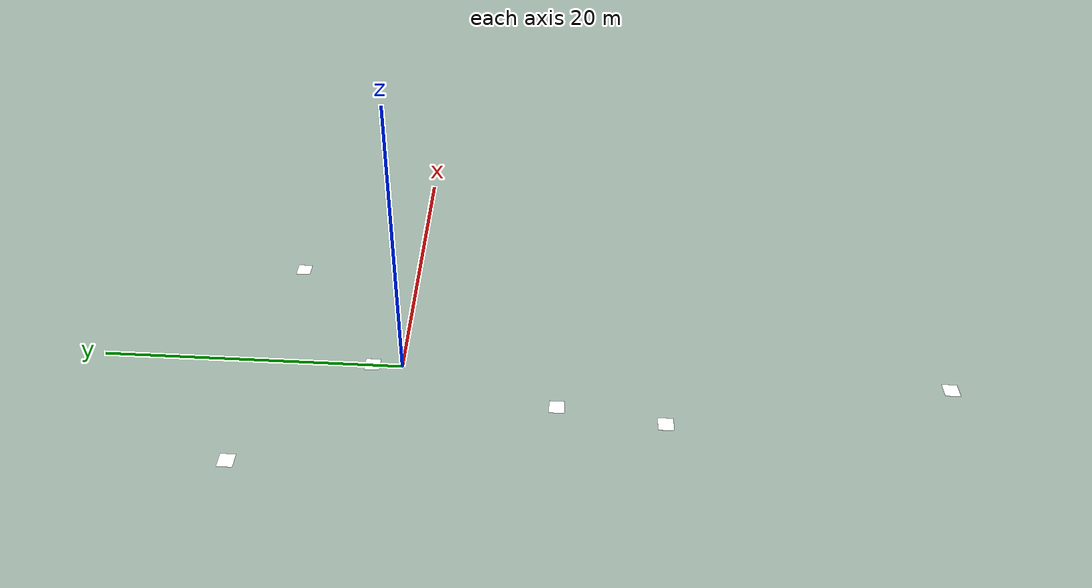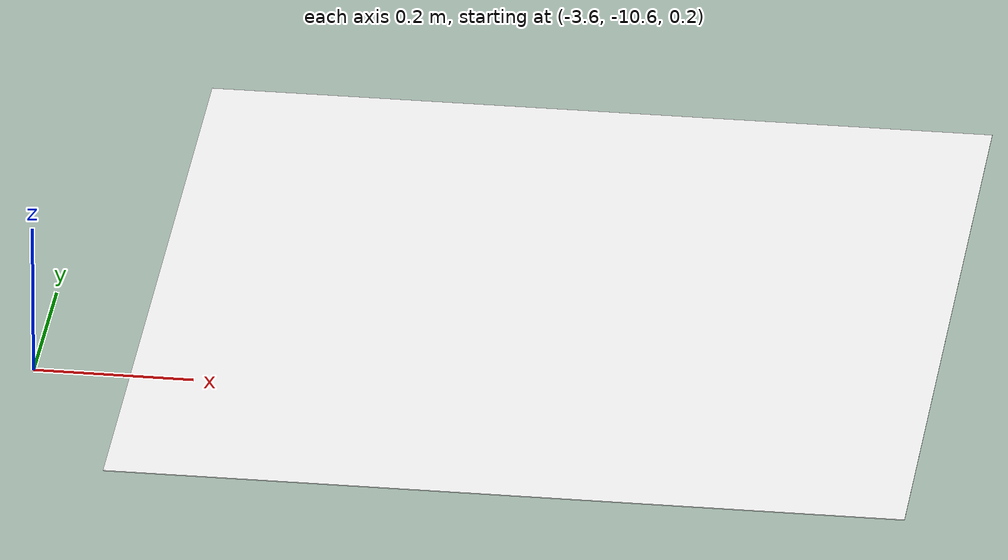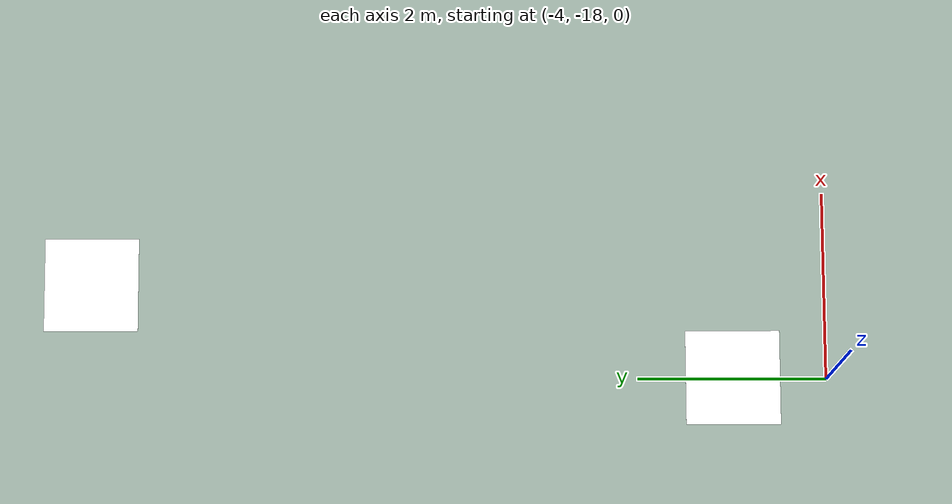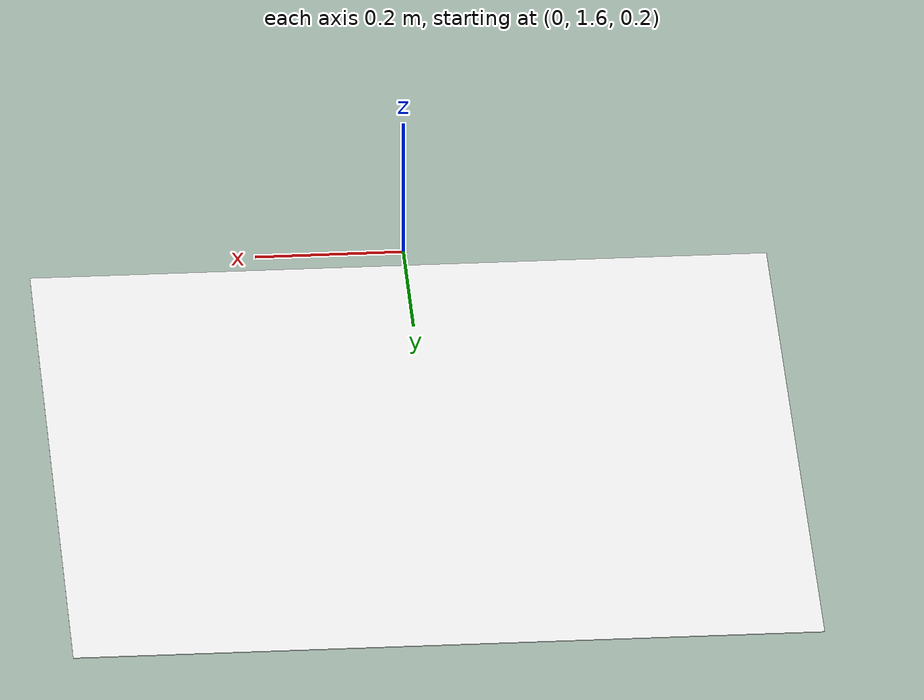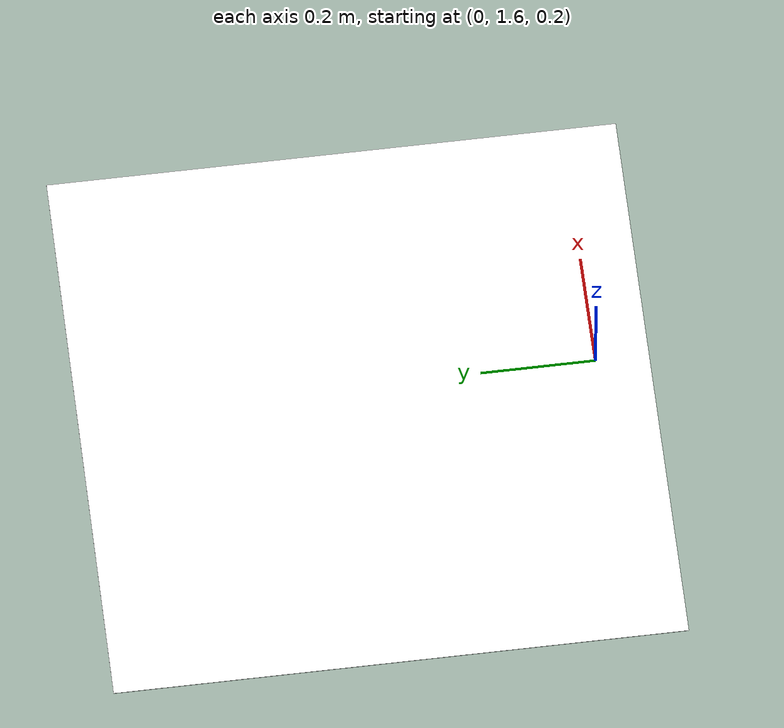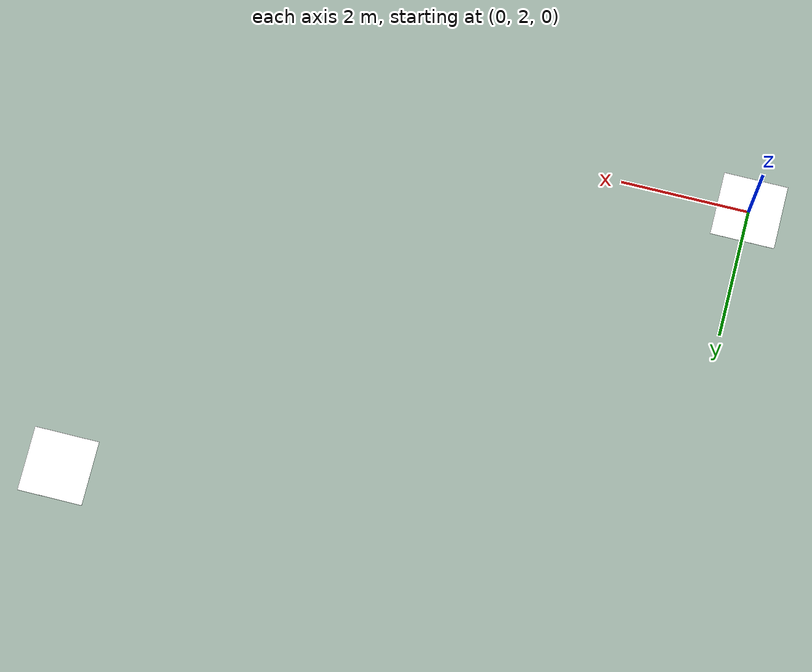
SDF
<?xml version='1.0' encoding='utf-8'?>
<sdf version="1.9">
  <model name="qr_markers">
    <static>true</static>
    <model name="qr_start">
      <static>true</static>
      <pose>0.0 -35.5 0.12 0 0 0</pose>
      <link name="print">
        <visual name="qr">
          <geometry>
            <plane>
              <normal>0 0 1</normal>
              <size>1.0 1.0</size>
            </plane>
          </geometry>
          <material>
            <ambient>1 1 1 1</ambient>
            <diffuse>1 1 1 1</diffuse>
            <specular>0 0 0 1</specular>
            <lighting>false</lighting>
            <pbr>
              <metal>
                <albedo_map>model://qr_markers/materials/textures/qr_start.png</albedo_map>
                <roughness>1</roughness>
                <metalness>0</metalness>
              </metal>
            </pbr>
          </material>
        </visual>
      </link>
    </model>
    <model name="qr_nonmatch_early">
      <static>true</static>
      <pose>-4.0 -17.0 0.12 0 0 0</pose>
      <link name="print">
        <visual name="qr">
          <geometry>
            <plane>
              <normal>0 0 1</normal>
              <size>1.0 1.0</size>
            </plane>
          </geometry>
          <material>
            <ambient>1 1 1 1</ambient>
            <diffuse>1 1 1 1</diffuse>
            <specular>0 0 0 1</specular>
            <lighting>false</lighting>
            <pbr>
              <metal>
                <albedo_map>model://qr_markers/materials/textures/qr_nonmatch_early.png</albedo_map>
                <roughness>1</roughness>
                <metalness>0</metalness>
              </metal>
            </pbr>
          </material>
        </visual>
      </link>
    </model>
    <model name="qr_target_early">
      <static>true</static>
      <pose>-3.0 -10.2 0.12 0 0 0</pose>
      <link name="print">
        <visual name="qr">
          <geometry>
            <plane>
              <normal>0 0 1</normal>
              <size>1.0 1.0</size>
            </plane>
          </geometry>
          <material>
            <ambient>1 1 1 1</ambient>
            <diffuse>1 1 1 1</diffuse>
            <specular>0 0 0 1</specular>
            <lighting>false</lighting>
            <pbr>
              <metal>
                <albedo_map>model://qr_markers/materials/textures/qr_target_early.png</albedo_map>
                <roughness>1</roughness>
                <metalness>0</metalness>
              </metal>
            </pbr>
          </material>
        </visual>
      </link>
    </model>
    <model name="qr_nonmatch_west">
      <static>true</static>
      <pose>-8.5 9.6 0.12 0 0 0</pose>
      <link name="print">
        <visual name="qr">
          <geometry>
            <plane>
              <normal>0 0 1</normal>
              <size>1.0 1.0</size>
            </plane>
          </geometry>
          <material>
            <ambient>1 1 1 1</ambient>
            <diffuse>1 1 1 1</diffuse>
            <specular>0 0 0 1</specular>
            <lighting>false</lighting>
            <pbr>
              <metal>
                <albedo_map>model://qr_markers/materials/textures/qr_nonmatch_west.png</albedo_map>
                <roughness>1</roughness>
                <metalness>0</metalness>
              </metal>
            </pbr>
          </material>
        </visual>
      </link>
    </model>
    <model name="qr_nonmatch_east">
      <static>true</static>
      <pose>9.2 8.4 0.12 0 0 0</pose>
      <link name="print">
        <visual name="qr">
          <geometry>
            <plane>
              <normal>0 0 1</normal>
              <size>1.0 1.0</size>
            </plane>
          </geometry>
          <material>
            <ambient>1 1 1 1</ambient>
            <diffuse>1 1 1 1</diffuse>
            <specular>0 0 0 1</specular>
            <lighting>false</lighting>
            <pbr>
              <metal>
                <albedo_map>model://qr_markers/materials/textures/qr_nonmatch_east.png</albedo_map>
                <roughness>1</roughness>
                <metalness>0</metalness>
              </metal>
            </pbr>
          </material>
        </visual>
      </link>
    </model>
    <model name="qr_red_excluded">
      <static>true</static>
      <pose>0.0 2.0 0.12 0 0 0</pose>
      <link name="print">
        <visual name="qr">
          <geometry>
            <plane>
              <normal>0 0 1</normal>
              <size>1.0 1.0</size>
            </plane>
          </geometry>
          <material>
            <ambient>1 1 1 1</ambient>
            <diffuse>1 1 1 1</diffuse>
            <specular>0 0 0 1</specular>
            <lighting>false</lighting>
            <pbr>
              <metal>
                <albedo_map>model://qr_markers/materials/textures/qr_red_excluded.png</albedo_map>
                <roughness>1</roughness>
                <metalness>0</metalness>
              </metal>
            </pbr>
          </material>
        </visual>
      </link>
    </model>
  </model>
</sdf>
